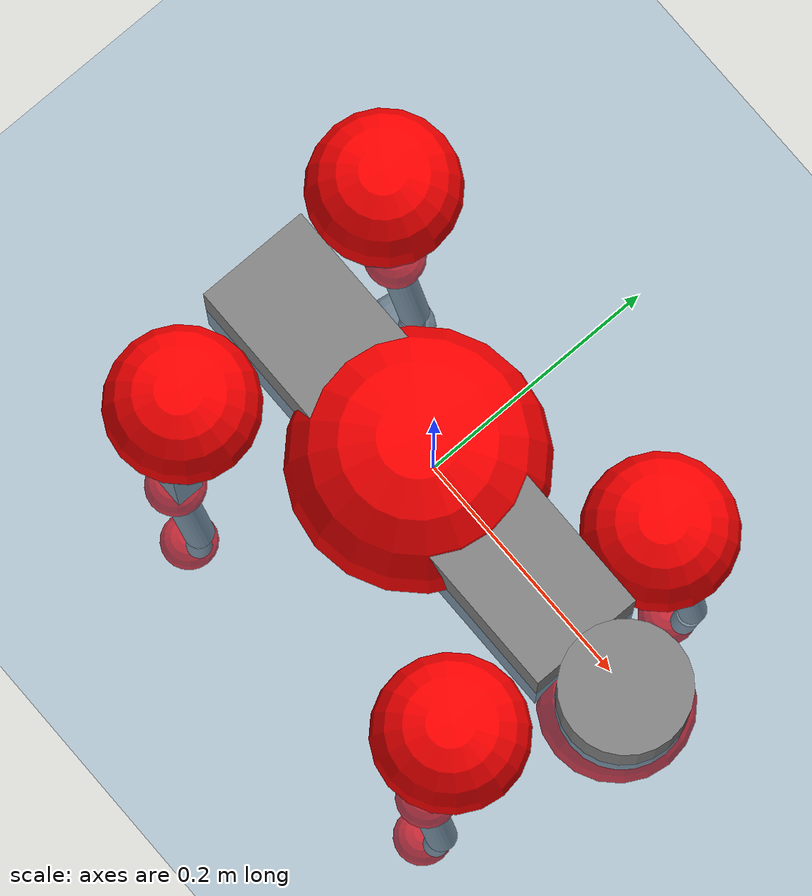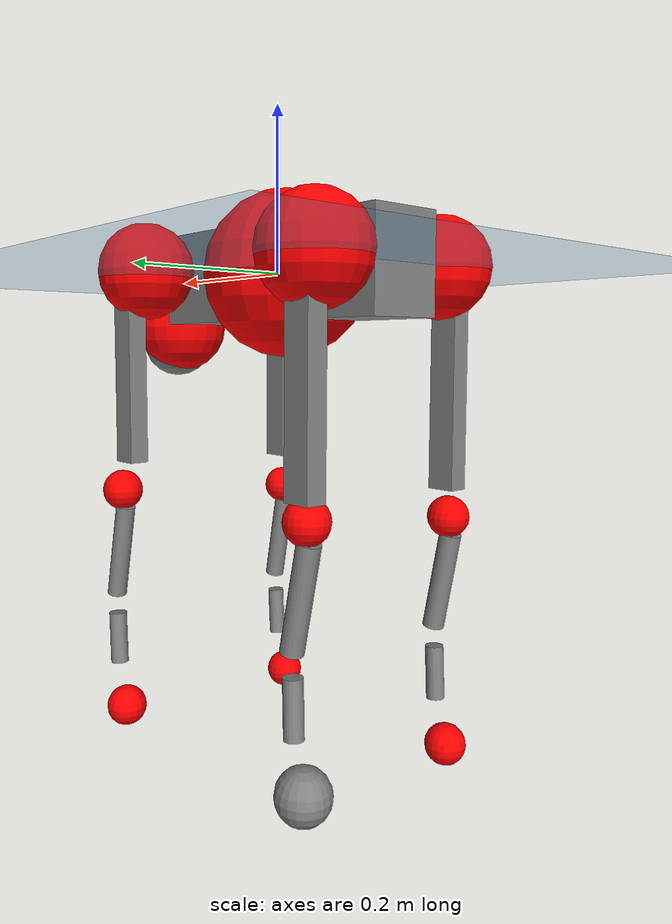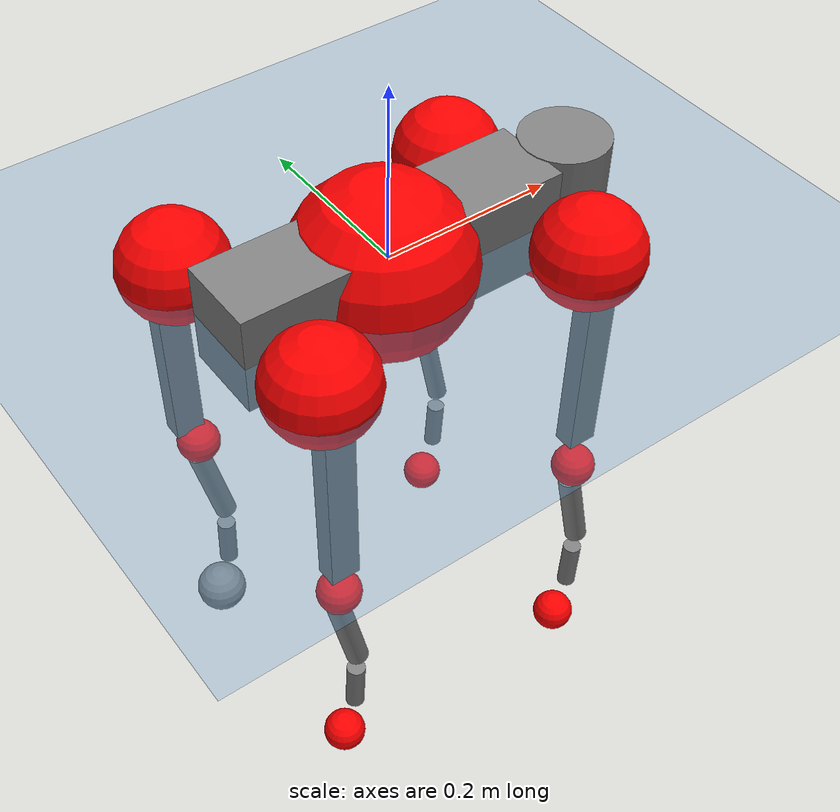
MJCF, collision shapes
<mujoco model="go2">
  <compiler angle="radian" assetdir="assets" balanceinertia="true" inertiafromgeom="false"/>

  <option timestep="0.005" density="1.2" viscosity="2e-05"/>

  <size nkey="1"/>

  <visual>
    <quality shadowsize="8192"/>
    <map shadowclip="0.5"/>
  </visual>

  <default>
    <default class="/">
      <geom contype="0" conaffinity="0" group="1" solref="-1000 -80"/>
      <site size="0.01 0.005 0.005" group="5"/>
      <general forcelimited="true" biastype="affine" gainprm="20" biasprm="0 -20 -0.5"/>
      <default class="go2">
        <joint armature="0.01" damping="0.01" frictionloss="0.2"/>
        <geom condim="1" margin="0.001"/>
        <default class="visual">
          <geom type="mesh" group="2"/>
        </default>
        <default class="collision">
          <geom group="3"/>
          <default class="foot">
            <geom size="0.022 0 0" condim="6" priority="1" friction="0.8 0.02 0.01" solimp="0.015 1 0.022"/>
          </default>
        </default>
        <default class="reward_collision_sphere">
          <geom group="5" rgba="1 0 0 1"/>
        </default>
      </default>
    </default>
  </default>

  <asset>
    <texture type="skybox" colorspace="auto" name="//unnamed_texture_0" builtin="gradient" rgb1="0.95 0.95 0.95" rgb2="0.95 0.95 0.95" width="100" height="600"/>
    <texture type="2d" colorspace="auto" name="texplane" builtin="checker" rgb1="0.345 0.575 0.748" rgb2="0.345 0.575 0.748" markrgb="1 1 1" width="512" height="512"/>
    <material name="MatPlane" class="/" texture="texplane" texuniform="true" texrepeat="2 2" specular="0.9"/>
    <material name="metal" class="/" rgba="0.9 0.95 0.95 1"/>
    <material name="black" class="/" rgba="0 0 0 1"/>
    <material name="white" class="/"/>
    <material name="gray" class="/" rgba="0.671705 0.692426 0.77427 1"/>
    <mesh name="base_0" class="/" file="base_0.obj"/>
    <mesh name="base_1" class="/" file="base_1.obj"/>
    <mesh name="base_2" class="/" file="base_2.obj"/>
    <mesh name="base_3" class="/" file="base_3.obj"/>
    <mesh name="base_4" class="/" file="base_4.obj"/>
    <mesh name="hip_0" class="/" file="hip_0.obj"/>
    <mesh name="hip_1" class="/" file="hip_1.obj"/>
    <mesh name="thigh_0" class="/" file="thigh_0.obj"/>
    <mesh name="thigh_1" class="/" file="thigh_1.obj"/>
    <mesh name="thigh_mirror_0" class="/" file="thigh_mirror_0.obj"/>
    <mesh name="thigh_mirror_1" class="/" file="thigh_mirror_1.obj"/>
    <mesh name="calf_0" class="/" file="calf_0.obj"/>
    <mesh name="calf_1" class="/" file="calf_1.obj"/>
    <mesh name="calf_mirror_0" class="/" file="calf_mirror_0.obj"/>
    <mesh name="calf_mirror_1" class="/" file="calf_mirror_1.obj"/>
    <mesh name="foot" class="/" file="foot.obj"/>
  </asset>

  <worldbody>
    <geom name="floor" class="/" size="100 100 0.125" type="plane" group="0" material="MatPlane"/>
    <light name="toplight_shadow" class="/" pos="0 0 5" dir="0.0990148 0.0990148 -0.990148" type="directional" ambient="0.04 0.04 0.04" diffuse="0.55 0.55 0.55" specular="0.12 0.12 0.12"/>
    <light name="toplight_fill" class="/" pos="0 0 5" dir="0.0990148 0.0990148 -0.990148" type="directional" castshadow="false" ambient="0.04 0.04 0.04" diffuse="0.3 0.3 0.3" specular="0.08 0.08 0.08"/>
    <body name="trunk" childclass="go2" pos="-0.0115934 -0.00488509 0.000128851" quat="0.999999 -0.000567152 -0.00085336 -0.000979085">
      <inertial pos="0.0176114 0.000138227 -0.00706943" quat="0.0261848 0.705975 -0.0192445 0.707491" mass="7.05372" diaginertia="0.0285307 0.0386863 0.0975723"/>
      <joint name="//unnamed_joint_0" type="free" armature="0" damping="0" frictionloss="0"/>
      <geom name="//unnamed_geom_1" class="visual" material="black" mesh="base_0"/>
      <geom name="//unnamed_geom_2" class="visual" material="black" mesh="base_1"/>
      <geom name="//unnamed_geom_3" class="visual" material="black" mesh="base_2"/>
      <geom name="//unnamed_geom_4" class="visual" material="white" mesh="base_3"/>
      <geom name="//unnamed_geom_5" class="visual" material="gray" mesh="base_4"/>
      <geom name="trunk_1" class="collision" size="0.188964 0.0469648 0.0572619" type="box"/>
      <geom name="trunk_2" class="collision" size="0.0502297 0.0452068" pos="0.232264 0 0.0132698" type="cylinder"/>
      <geom name="trunk_3" class="collision" size="0.0472159" pos="0.238784 0 -0.0796191"/>
      <geom name="//unnamed_geom_9" class="reward_collision_sphere" size="0.100459"/>
      <geom name="//unnamed_geom_10" class="reward_collision_sphere" size="0.0602757" pos="0.228189 0 -0.0597143"/>
      <site name="imu" pos="-0.0373081 0.00617644 0.12167" size="0.0100459"/>
      <camera name="track" pos="0 -1.74368 0" quat="0.707107 0.707107 0 0" mode="trackcom"/>
      <camera name="ego_camera" pos="0.254268 0 0.0597143" quat="-0.5 -0.5 0.5 0.5"/>
      <body name="FL_hip" pos="0.157861 0.0394339 0.00724735" quat="0.999986 0.000294984 0.00269752 0.00462223">
        <inertial pos="0.00812599 0.00678922 -0.00144726" quat="0.499663 0.499525 0.500185 0.500627" mass="0.703618" diaginertia="0.000324807 0.00033175 0.00198545"/>
        <joint name="FL_hip_joint" pos="0 0 0" axis="0.997387 0.0305548 0.0654644" stiffness="0.0590648" range="-1.04251 1.04555" armature="0.0162183" damping="0" frictionloss="0.139292"/>
        <geom name="//unnamed_geom_11" class="visual" material="metal" mesh="hip_0"/>
        <geom name="//unnamed_geom_12" class="visual" material="gray" mesh="hip_1"/>
        <geom name="//unnamed_geom_13" class="collision" size="0.0462113 0.0200919" pos="0 0.069747 0" quat="0.707107 0.707107 0 0" type="cylinder"/>
        <geom name="//unnamed_geom_14" class="reward_collision_sphere" size="0.0602757" pos="0 0.0610286 0"/>
        <body name="FL_thigh" pos="0.00807051 0.0807673 0.00675041" quat="0.999996 -0.00130165 -0.00234761 0.000487314">
          <inertial pos="-0.00304011 -0.0201392 -0.0297674" quat="0.84499 0.078344 -0.0268809 0.528329" mass="1.23421" diaginertia="0.00227303 0.0031115 0.00377182"/>
          <joint name="FL_thigh_joint" pos="0 0 0" axis="0.0227136 0.999431 0.0249169" stiffness="0.0389473" range="-1.67737 3.49153" armature="0.00426108" damping="0.0401592" frictionloss="0.273112"/>
          <geom name="//unnamed_geom_15" class="visual" material="metal" mesh="thigh_0"/>
          <geom name="//unnamed_geom_16" class="visual" material="gray" mesh="thigh_1"/>
          <geom name="//unnamed_geom_17" class="collision" size="0.106989 0.0123063 0.0170781" pos="0 0 -0.141324" quat="0.707107 0 0.707107 0" type="box"/>
          <body name="FL_calf" pos="0.00108324 0.0139784 -0.283071" quat="0.99999 0.00260932 0.00199655 0.00301039">
            <inertial pos="-0.000876857 0.00216185 -0.190213" quat="0.743109 0.0234463 -0.0373066 0.667719" mass="0.200667" diaginertia="0.000542984 0.000678372 0.000224603"/>
            <joint name="FL_calf_joint" pos="0 0 0" axis="0.00386189 0.999768 0.0211772" range="-2.71082 -0.806778" armature="0.0101407" damping="0.0489624" frictionloss="0.195421"/>
            <geom name="//unnamed_geom_18" class="visual" material="gray" mesh="calf_0"/>
            <geom name="//unnamed_geom_19" class="visual" material="black" mesh="calf_1"/>
            <geom name="FL_calf0" class="collision" size="0.0120551 0.0602757" pos="0.00651969 0 -0.0796191" quat="0.994493 0 -0.104807 0" type="cylinder"/>
            <geom name="//unnamed_geom_21" class="collision" size="0.0110505 0.0326493" pos="0.0162992 0 -0.196394" quat="0.999688 0 0.0249974 0" type="cylinder"/>
            <geom name="//unnamed_geom_22" class="visual" pos="0 0 -0.282648" quat="1 0 0 0" material="black" mesh="foot"/>
            <geom name="FL_foot" class="foot" size="0.0147681" pos="-0.00162992 0 -0.282648"/>
            <geom name="//unnamed_geom_24" class="reward_collision_sphere" size="0.0251149"/>
            <geom name="//unnamed_geom_25" class="reward_collision_sphere" size="0.0251149" pos="-0.00162992 0 -0.282648"/>
            <site name="FL_foot" class="foot" pos="-0.00162992 0 -0.282648" size="0.0100459"/>
          </body>
        </body>
      </body>
      <body name="FR_hip" pos="0.171352 -0.0538413 0.0103573" quat="1 2.67464e-05 1.57119e-05 4.35084e-05">
        <inertial pos="-0.0177558 -0.00494883 0.0119761" quat="0.523459 0.489151 0.478156 0.508024" mass="0.567449" diaginertia="0.000266462 0.000277991 0.00164625"/>
        <joint name="FR_hip_joint" pos="0 0 0" axis="0.99837 -0.0529463 0.0213107" range="-0.800316 1.02563" armature="0.0110891" damping="0.00501781" frictionloss="0.307845"/>
        <geom name="//unnamed_geom_26" class="visual" pos="0 -3.96505e-09 -1.70069e-07" quat="4.63268e-05 1 0 0" material="metal" mesh="hip_0"/>
        <geom name="//unnamed_geom_27" class="visual" pos="0 -6.42782e-09 4.20646e-07" quat="4.63268e-05 1 0 0" material="gray" mesh="hip_1"/>
        <geom name="//unnamed_geom_28" class="collision" size="0.0462113 0.0200919" pos="0 -0.069747 0" quat="0.707107 0.707107 0 0" type="cylinder"/>
        <geom name="//unnamed_geom_29" class="reward_collision_sphere" size="0.0602757" pos="0 -0.0610286 0"/>
        <body name="FR_thigh" pos="-0.00111819 -0.0794748 -0.00734417" quat="1 0.000299228 -1.43875e-05 0.000195047">
          <inertial pos="0.00339724 0.0049245 -0.0466481" quat="0.555164 -0.0206812 0.0870487 0.826915" mass="1.11343" diaginertia="0.00210099 0.00273562 0.00343188"/>
          <joint name="FR_thigh_joint" pos="0 0 0" axis="0.0373543 -0.998943 0.0267988" range="-3.47038 1.44459" armature="0.011926" damping="0.050729" frictionloss="0.17993"/>
          <geom name="//unnamed_geom_30" class="visual" material="metal" mesh="thigh_mirror_0"/>
          <geom name="//unnamed_geom_31" class="visual" material="gray" mesh="thigh_mirror_1"/>
          <geom name="//unnamed_geom_32" class="collision" size="0.106989 0.0123063 0.0170781" pos="0 0 -0.141324" quat="0.707107 0 0.707107 0" type="box"/>
          <body name="FR_calf" pos="0.000324726 -0.00360776 -0.293448" quat="0.999977 -0.00646432 -0.00170572 0.000755344">
            <inertial pos="-0.00950945 0.00868016 -0.198295" quat="0.699478 0.000628376 0.00723689 0.714617" mass="0.282501" diaginertia="0.00050179 0.000647445 0.000185133"/>
            <joint name="FR_calf_joint" pos="0 0 0" axis="-0.0091873 -0.999813 0.0170098" range="1.09053 2.72328" armature="0.00934825" damping="0" frictionloss="0.0867776"/>
            <geom name="//unnamed_geom_33" class="visual" material="gray" mesh="calf_mirror_0"/>
            <geom name="//unnamed_geom_34" class="visual" material="black" mesh="calf_mirror_1"/>
            <geom name="FR_calf0" class="collision" size="0.0130597 0.0602757" pos="0.00814962 0 -0.0796191" quat="0.995004 0 -0.0998334 0" type="cylinder"/>
            <geom name="//unnamed_geom_36" class="collision" size="0.0110505 0.0326493" pos="0.0162992 0 -0.196394" quat="0.999688 0 0.0249974 0" type="cylinder"/>
            <geom name="//unnamed_geom_37" class="visual" pos="0 0 -0.282648" quat="1 0 0 0" material="black" mesh="foot"/>
            <geom name="FR_foot" class="foot" size="0.024409" pos="-0.00162992 0 -0.282648"/>
            <geom name="//unnamed_geom_39" class="reward_collision_sphere" size="0.0251149"/>
            <geom name="//unnamed_geom_40" class="reward_collision_sphere" size="0.0251149" pos="-0.00162992 0 -0.282648"/>
            <site name="FR_foot" class="foot" pos="-0.00162992 0 -0.282648" size="0.0100459"/>
          </body>
        </body>
      </body>
      <body name="RL_hip" pos="-0.172516 0.0518067 0.0057033" quat="0.999998 0.00123344 -0.0014439 0.000138138">
        <inertial pos="-0.00833701 0.0159917 0.00161922" quat="0.477499 0.541421 0.475543 0.50271" mass="0.727858" diaginertia="0.000325175 0.000299122 0.00220916"/>
        <joint name="RL_hip_joint" pos="0 0 0" axis="-0.999617 -0.0249395 -0.0119966" stiffness="0.00194792" range="-1.22124 0.951514" armature="0.00982451" damping="0.0151804" frictionloss="0.243968"/>
        <geom name="//unnamed_geom_41" class="visual" pos="4.46053e-09 0 8.74366e-07" quat="4.63268e-05 0 1 0" material="metal" mesh="hip_0"/>
        <geom name="//unnamed_geom_42" class="visual" pos="7.23105e-09 0 7.75438e-07" quat="4.63268e-05 0 1 0" material="gray" mesh="hip_1"/>
        <geom name="//unnamed_geom_43" class="collision" size="0.0462113 0.0200919" pos="0 0.069747 0" quat="0.707107 0.707107 0 0" type="cylinder"/>
        <geom name="//unnamed_geom_44" class="reward_collision_sphere" size="0.0602757" pos="0 0.0610286 0"/>
        <body name="RL_thigh" pos="-0.00685007 0.078426 0.00230952" quat="0.999997 -0.000751125 -0.000710392 -0.00206736">
          <inertial pos="-0.00546688 -0.0325242 -0.0431051" quat="0.839863 0.111014 -0.0523718 0.528738" mass="1.00468" diaginertia="0.0020976 0.00261207 0.00376741"/>
          <joint name="RL_thigh_joint" pos="0 0 0" axis="0.0571995 0.998192 0.0184866" stiffness="0.0453421" range="-0.697195 4.38041" armature="0.00412044" damping="0" frictionloss="0.0930737"/>
          <geom name="//unnamed_geom_45" class="visual" material="metal" mesh="thigh_0"/>
          <geom name="//unnamed_geom_46" class="visual" material="gray" mesh="thigh_1"/>
          <geom name="//unnamed_geom_47" class="collision" size="0.106989 0.0123063 0.0170781" pos="0 0 -0.141324" quat="0.707107 0 0.707107 0" type="box"/>
          <body name="RL_calf" pos="0.00791115 -0.010367 -0.268885" quat="0.999976 0.00167336 -0.00573981 -0.00358794">
            <inertial pos="0.00454814 -0.00127534 -0.202429" quat="0.69582 -0.0134124 -0.0272617 0.717574" mass="0.285811" diaginertia="0.000538721 0.00080214 0.000224181"/>
            <joint name="RL_calf_joint" pos="0 0 0" axis="-0.0128076 0.999712 -0.020286" stiffness="0.0288532" range="-2.78021 -0.677976" armature="0.00867601" damping="0.0156264" frictionloss="0.299901"/>
            <geom name="//unnamed_geom_48" class="visual" material="gray" mesh="calf_0"/>
            <geom name="//unnamed_geom_49" class="visual" material="black" mesh="calf_1"/>
            <geom name="RL_calf0" class="collision" size="0.0130597 0.0602757" pos="0.00814962 0 -0.0796191" quat="0.995004 0 -0.0998334 0" type="cylinder"/>
            <geom name="//unnamed_geom_51" class="collision" size="0.0110505 0.0326493" pos="0.0162992 0 -0.196394" quat="0.999688 0 0.0249974 0" type="cylinder"/>
            <geom name="//unnamed_geom_52" class="visual" pos="0 0 -0.282648" quat="1 0 0 0" material="black" mesh="foot"/>
            <geom name="RL_foot" class="foot" size="0.0308153" pos="-0.00162992 0 -0.282648"/>
            <geom name="//unnamed_geom_54" class="reward_collision_sphere" size="0.0251149"/>
            <geom name="//unnamed_geom_55" class="reward_collision_sphere" size="0.0251149" pos="-0.00162992 0 -0.282648"/>
            <site name="RL_foot" class="foot" pos="-0.00162992 0 -0.282648" size="0.0100459"/>
          </body>
        </body>
      </body>
      <body name="RR_hip" pos="-0.144814 -0.0458844 0.00344856" quat="0.999998 0.00132838 -0.000951944 0.00140649">
        <inertial pos="-0.00472709 -0.00832761 0.00139289" quat="0.487201 0.544185 0.455871 0.508606" mass="0.70699" diaginertia="0.00029611 0.000275996 0.00182507"/>
        <joint name="RR_hip_joint" pos="0 0 0" axis="-0.997775 0.0666574 -0.00100606" stiffness="0.00758795" range="-1.03435 0.967942" armature="0.0126857" damping="0" frictionloss="0.209403"/>
        <geom name="//unnamed_geom_56" class="visual" pos="-4.45856e-09 -3.96505e-09 1.04444e-06" quat="2.14617e-09 4.63268e-05 4.63268e-05 -1" material="metal" mesh="hip_0"/>
        <geom name="//unnamed_geom_57" class="visual" pos="-7.23592e-09 -6.42782e-09 3.54792e-07" quat="2.14617e-09 4.63268e-05 4.63268e-05 -1" material="gray" mesh="hip_1"/>
        <geom name="//unnamed_geom_58" class="collision" size="0.0462113 0.0200919" pos="0 -0.069747 0" quat="0.707107 0.707107 0 0" type="cylinder"/>
        <geom name="//unnamed_geom_59" class="reward_collision_sphere" size="0.0602757" pos="0 -0.0610286 0"/>
        <body name="RR_thigh" pos="-0.00149817 -0.0802916 -0.0115975" quat="0.999997 -0.00195324 -0.00118325 -0.000475368">
          <inertial pos="-0.00606213 0.0193165 -0.0470797" quat="0.493123 -0.0264914 0.0730468 0.866482" mass="1.22687" diaginertia="0.00215708 0.00259076 0.00301423"/>
          <joint name="RR_thigh_joint" pos="0 0 0" axis="0.00931424 -0.999888 0.0116799" stiffness="0.0452347" range="-4.51925 0.435225" armature="0.00520964" damping="0.0607919" frictionloss="0.26393"/>
          <geom name="//unnamed_geom_60" class="visual" material="metal" mesh="thigh_mirror_0"/>
          <geom name="//unnamed_geom_61" class="visual" material="gray" mesh="thigh_mirror_1"/>
          <geom name="//unnamed_geom_62" class="collision" size="0.106989 0.0123063 0.0170781" pos="0 0 -0.141324" quat="0.707107 0 0.707107 0" type="box"/>
          <body name="RR_calf" pos="-0.00235883 -0.00137464 -0.281787" quat="1 -0.000157044 0.000480717 -0.000413236">
            <inertial pos="0.016555 0.0140439 -0.200316" quat="0.703517 -0.00462188 0.00193195 0.710661" mass="0.213319" diaginertia="0.00059596 0.000639795 0.000223403"/>
            <joint name="RR_calf_joint" pos="0 0 0" axis="0.0222674 -0.999752 0.000230013" stiffness="0.00753921" range="0.926694 2.46897" armature="0.0104198" damping="0" frictionloss="0.071011"/>
            <geom name="//unnamed_geom_63" class="visual" material="gray" mesh="calf_mirror_0"/>
            <geom name="//unnamed_geom_64" class="visual" material="black" mesh="calf_mirror_1"/>
            <geom name="RR_calf0" class="collision" size="0.0130597 0.0602757" pos="0.00814962 0 -0.0796191" quat="0.995004 0 -0.0998334 0" type="cylinder"/>
            <geom name="//unnamed_geom_66" class="collision" size="0.0110505 0.0326493" pos="0.0162992 0 -0.196394" quat="0.999688 0 0.0249974 0" type="cylinder"/>
            <geom name="//unnamed_geom_67" class="visual" pos="0 0 -0.282648" quat="1 0 0 0" material="black" mesh="foot"/>
            <geom name="RR_foot" class="foot" size="0.0118255" pos="-0.00162992 0 -0.282648"/>
            <geom name="//unnamed_geom_69" class="reward_collision_sphere" size="0.0251149"/>
            <geom name="//unnamed_geom_70" class="reward_collision_sphere" size="0.0251149" pos="-0.00162992 0 -0.282648"/>
            <site name="RR_foot" class="foot" pos="-0.00162992 0 -0.282648" size="0.0100459"/>
          </body>
        </body>
      </body>
    </body>
  </worldbody>

  <contact>
    <pair class="/" geom1="floor" geom2="FL_foot" name="//unnamed_contact_0"/>
    <pair class="/" geom1="floor" geom2="FR_foot" name="//unnamed_contact_1"/>
    <pair class="/" geom1="floor" geom2="RL_foot" name="//unnamed_contact_2"/>
    <pair class="/" geom1="floor" geom2="RR_foot" name="//unnamed_contact_3"/>
  </contact>

  <actuator>
    <general name="FL_hip" class="/" joint="FL_hip_joint" forcerange="-23.3084 23.3084" gainprm="20.8931" biasprm="0 -20.8931 -0.454811"/>
    <general name="FL_thigh" class="/" joint="FL_thigh_joint" forcerange="-33.3616 33.3616" gainprm="20.8931" biasprm="0 -20.8931 -0.454811"/>
    <general name="FL_calf" class="/" joint="FL_calf_joint" forcerange="-36.5196 36.5196" gainprm="20.8931" biasprm="0 -20.8931 -0.454811"/>
    <general name="FR_hip" class="/" joint="FR_hip_joint" forcerange="-23.9458 23.9458" gainprm="20.8931" biasprm="0 -20.8931 -0.454811"/>
    <general name="FR_thigh" class="/" joint="FR_thigh_joint" forcerange="-22.8992 22.8992" gainprm="20.8931" biasprm="0 -20.8931 -0.454811"/>
    <general name="FR_calf" class="/" joint="FR_calf_joint" forcerange="-32.8138 32.8138" gainprm="20.8931" biasprm="0 -20.8931 -0.454811"/>
    <general name="RL_hip" class="/" joint="RL_hip_joint" forcerange="-24.2404 24.2404" gainprm="20.8931" biasprm="0 -20.8931 -0.454811"/>
    <general name="RL_thigh" class="/" joint="RL_thigh_joint" forcerange="-16.8495 16.8495" gainprm="20.8931" biasprm="0 -20.8931 -0.454811"/>
    <general name="RL_calf" class="/" joint="RL_calf_joint" forcerange="-57.6508 57.6508" gainprm="20.8931" biasprm="0 -20.8931 -0.454811"/>
    <general name="RR_hip" class="/" joint="RR_hip_joint" forcerange="-23.7526 23.7526" gainprm="20.8931" biasprm="0 -20.8931 -0.454811"/>
    <general name="RR_thigh" class="/" joint="RR_thigh_joint" forcerange="-20.4241 20.4241" gainprm="20.8931" biasprm="0 -20.8931 -0.454811"/>
    <general name="RR_calf" class="/" joint="RR_calf_joint" forcerange="-69.5248 69.5248" gainprm="20.8931" biasprm="0 -20.8931 -0.454811"/>
  </actuator>

  <sensor>
    <gyro site="imu" name="imu_angular_velocity"/>
    <velocimeter site="imu" name="imu_linear_velocity"/>
    <framelinvel objtype="site" objname="FL_foot" name="FL_foot_global_linear_velocity"/>
    <framelinvel objtype="site" objname="FR_foot" name="FR_foot_global_linear_velocity"/>
    <framelinvel objtype="site" objname="RL_foot" name="RL_foot_global_linear_velocity"/>
    <framelinvel objtype="site" objname="RR_foot" name="RR_foot_global_linear_velocity"/>
  </sensor>

  <keyframe>
    <key name="home" qpos="0 0 0.325 1 0 0 0 0.1 0.8 -1.5 -0.1 -0.8 1.5 -0.1 0.8 -1.5 0.1 -0.8 1.5"/>
  </keyframe>
</mujoco>
